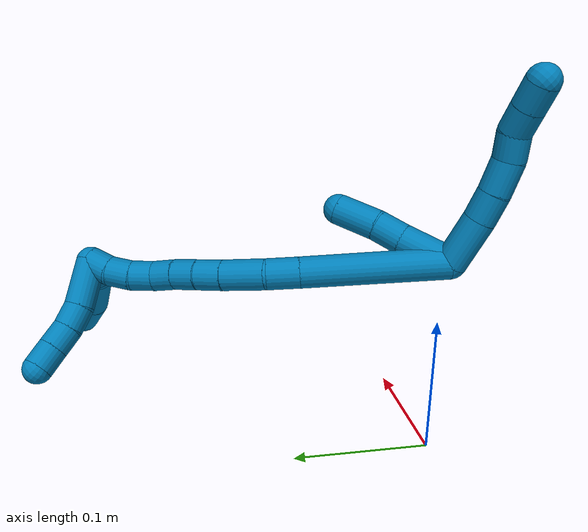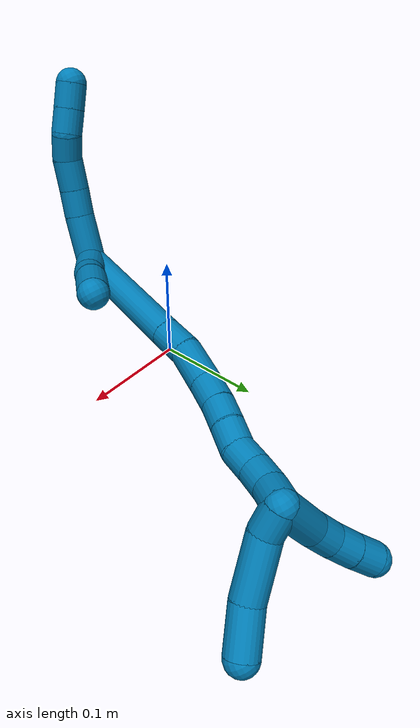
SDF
<sdf version="1.7">
 <world name="default">
  <model name="9">
   <static>0</static>
   <link name="9">
    <collision name="collision-cylinder-e_1_2_8">
     <pose>0.002254 0.006189 0.019031 -0.314427 0.112184 -0.017802</pose>
     <geometry><cylinder><radius>0.0125</radius><length>0.040277</length></cylinder></geometry>
     <surface>
      <friction><ode><mu>1.16</mu><mu2>1.16</mu2><slip1>0</slip1><slip2>0</slip2></ode></friction>
      <contact><ode><kp>1e+06</kp><kd>1</kd><max_vel>0</max_vel><min_depth>0.001</min_depth></ode></contact>
     </surface>
    </collision>
    <visual name="visual-cylinder-e_1_2_8">
     <pose>0.002254 0.006189 0.019031 -0.314427 0.112184 -0.017802</pose>
     <geometry><cylinder><radius>0.0125</radius><length>0.040277</length></cylinder></geometry>
     <material><ambient>0 0.490196 0.709804 1</ambient></material>
    </visual>
    <collision name="collision-cylinder-e_2_8_9">
     <pose>0.00621 0.016751 0.048389 -0.400535 0.1505 -0.030605</pose>
     <geometry><cylinder><radius>0.0125</radius><length>0.022687</length></cylinder></geometry>
     <surface>
      <friction><ode><mu>1.16</mu><mu2>1.16</mu2><slip1>0</slip1><slip2>0</slip2></ode></friction>
      <contact><ode><kp>1e+06</kp><kd>1</kd><max_vel>0</max_vel><min_depth>0.001</min_depth></ode></contact>
     </surface>
    </collision>
    <visual name="visual-cylinder-e_2_8_9">
     <pose>0.00621 0.016751 0.048389 -0.400535 0.1505 -0.030605</pose>
     <geometry><cylinder><radius>0.0125</radius><length>0.022687</length></cylinder></geometry>
     <material><ambient>0 0.490196 0.709804 1</ambient></material>
    </visual>
    <collision name="collision-cylinder-e_3_9_10">
     <pose>0.010977 0.026284 0.070225 -0.421483 0.238535 -0.051259</pose>
     <geometry><cylinder><radius>0.0125</radius><length>0.025958</length></cylinder></geometry>
     <surface>
      <friction><ode><mu>1.16</mu><mu2>1.16</mu2><slip1>0</slip1><slip2>0</slip2></ode></friction>
      <contact><ode><kp>1e+06</kp><kd>1</kd><max_vel>0</max_vel><min_depth>0.001</min_depth></ode></contact>
     </surface>
    </collision>
    <visual name="visual-cylinder-e_3_9_10">
     <pose>0.010977 0.026284 0.070225 -0.421483 0.238535 -0.051259</pose>
     <geometry><cylinder><radius>0.0125</radius><length>0.025958</length></cylinder></geometry>
     <material><ambient>0 0.490196 0.709804 1</ambient></material>
    </visual>
    <collision name="collision-cylinder-e_4_10_11">
     <pose>0.017263 0.037663 0.08926 -0.690596 0.318457 -0.115402</pose>
     <geometry><cylinder><radius>0.0125</radius><length>0.020563</length></cylinder></geometry>
     <surface>
      <friction><ode><mu>1.16</mu><mu2>1.16</mu2><slip1>0</slip1><slip2>0</slip2></ode></friction>
      <contact><ode><kp>1e+06</kp><kd>1</kd><max_vel>0</max_vel><min_depth>0.001</min_depth></ode></contact>
     </surface>
    </collision>
    <visual name="visual-cylinder-e_4_10_11">
     <pose>0.017263 0.037663 0.08926 -0.690596 0.318457 -0.115402</pose>
     <geometry><cylinder><radius>0.0125</radius><length>0.020563</length></cylinder></geometry>
     <material><ambient>0 0.490196 0.709804 1</ambient></material>
    </visual>
    <collision name="collision-cylinder-e_5_11_12">
     <pose>0.020235 0.049933 0.104821 -0.645465 -0.024594 0.008225</pose>
     <geometry><cylinder><radius>0.0125</radius><length>0.02012</length></cylinder></geometry>
     <surface>
      <friction><ode><mu>1.16</mu><mu2>1.16</mu2><slip1>0</slip1><slip2>0</slip2></ode></friction>
      <contact><ode><kp>1e+06</kp><kd>1</kd><max_vel>0</max_vel><min_depth>0.001</min_depth></ode></contact>
     </surface>
    </collision>
    <visual name="visual-cylinder-e_5_11_12">
     <pose>0.020235 0.049933 0.104821 -0.645465 -0.024594 0.008225</pose>
     <geometry><cylinder><radius>0.0125</radius><length>0.02012</length></cylinder></geometry>
     <material><ambient>0 0.490196 0.709804 1</ambient></material>
    </visual>
    <collision name="collision-cylinder-e_6_12_6">
     <pose>0.019766 0.062046 0.121051 -0.636883 -0.02176 0.007174</pose>
     <geometry><cylinder><radius>0.0125</radius><length>0.020395</length></cylinder></geometry>
     <surface>
      <friction><ode><mu>1.16</mu><mu2>1.16</mu2><slip1>0</slip1><slip2>0</slip2></ode></friction>
      <contact><ode><kp>1e+06</kp><kd>1</kd><max_vel>0</max_vel><min_depth>0.001</min_depth></ode></contact>
     </surface>
    </collision>
    <visual name="visual-cylinder-e_6_12_6">
     <pose>0.019766 0.062046 0.121051 -0.636883 -0.02176 0.007174</pose>
     <geometry><cylinder><radius>0.0125</radius><length>0.020395</length></cylinder></geometry>
     <material><ambient>0 0.490196 0.709804 1</ambient></material>
    </visual>
    <collision name="collision-cylinder-e_1_2_13">
     <pose>0.018905 0.005338 -0.007181 -2.50237 1.12874 -2.17815</pose>
     <geometry><cylinder><radius>0.0125</radius><length>0.041832</length></cylinder></geometry>
     <surface>
      <friction><ode><mu>1.16</mu><mu2>1.16</mu2><slip1>0</slip1><slip2>0</slip2></ode></friction>
      <contact><ode><kp>1e+06</kp><kd>1</kd><max_vel>0</max_vel><min_depth>0.001</min_depth></ode></contact>
     </surface>
    </collision>
    <visual name="visual-cylinder-e_1_2_13">
     <pose>0.018905 0.005338 -0.007181 -2.50237 1.12874 -2.17815</pose>
     <geometry><cylinder><radius>0.0125</radius><length>0.041832</length></cylinder></geometry>
     <material><ambient>0 0.490196 0.709804 1</ambient></material>
    </visual>
    <collision name="collision-cylinder-e_2_13_14">
     <pose>0.047965 0.015279 -0.017854 -2.21975 1.05351 -1.72809</pose>
     <geometry><cylinder><radius>0.0125</radius><length>0.023366</length></cylinder></geometry>
     <surface>
      <friction><ode><mu>1.16</mu><mu2>1.16</mu2><slip1>0</slip1><slip2>0</slip2></ode></friction>
      <contact><ode><kp>1e+06</kp><kd>1</kd><max_vel>0</max_vel><min_depth>0.001</min_depth></ode></contact>
     </surface>
    </collision>
    <visual name="visual-cylinder-e_2_13_14">
     <pose>0.047965 0.015279 -0.017854 -2.21975 1.05351 -1.72809</pose>
     <geometry><cylinder><radius>0.0125</radius><length>0.023366</length></cylinder></geometry>
     <material><ambient>0 0.490196 0.709804 1</ambient></material>
    </visual>
    <collision name="collision-cylinder-e_3_14_5">
     <pose>0.073132 0.025206 -0.028352 -2.49179 1.04062 -2.07869</pose>
     <geometry><cylinder><radius>0.0125</radius><length>0.034802</length></cylinder></geometry>
     <surface>
      <friction><ode><mu>1.16</mu><mu2>1.16</mu2><slip1>0</slip1><slip2>0</slip2></ode></friction>
      <contact><ode><kp>1e+06</kp><kd>1</kd><max_vel>0</max_vel><min_depth>0.001</min_depth></ode></contact>
     </surface>
    </collision>
    <visual name="visual-cylinder-e_3_14_5">
     <pose>0.073132 0.025206 -0.028352 -2.49179 1.04062 -2.07869</pose>
     <geometry><cylinder><radius>0.0125</radius><length>0.034802</length></cylinder></geometry>
     <material><ambient>0 0.490196 0.709804 1</ambient></material>
    </visual>
    <collision name="collision-cylinder-e_1_2_15">
     <pose>0.026931 0.026678 -0.043541 -2.59188 0.485327 -1.44085</pose>
     <geometry><cylinder><radius>0.0125</radius><length>0.115461</length></cylinder></geometry>
     <surface>
      <friction><ode><mu>1.16</mu><mu2>1.16</mu2><slip1>0</slip1><slip2>0</slip2></ode></friction>
      <contact><ode><kp>1e+06</kp><kd>1</kd><max_vel>0</max_vel><min_depth>0.001</min_depth></ode></contact>
     </surface>
    </collision>
    <visual name="visual-cylinder-e_1_2_15">
     <pose>0.026931 0.026678 -0.043541 -2.59188 0.485327 -1.44085</pose>
     <geometry><cylinder><radius>0.0125</radius><length>0.115461</length></cylinder></geometry>
     <material><ambient>0 0.490196 0.709804 1</ambient></material>
    </visual>
    <collision name="collision-cylinder-e_2_15_16">
     <pose>0.059999 0.059707 -0.096955 -2.56998 0.481694 -1.39244</pose>
     <geometry><cylinder><radius>0.0125</radius><length>0.026494</length></cylinder></geometry>
     <surface>
      <friction><ode><mu>1.16</mu><mu2>1.16</mu2><slip1>0</slip1><slip2>0</slip2></ode></friction>
      <contact><ode><kp>1e+06</kp><kd>1</kd><max_vel>0</max_vel><min_depth>0.001</min_depth></ode></contact>
     </surface>
    </collision>
    <visual name="visual-cylinder-e_2_15_16">
     <pose>0.059999 0.059707 -0.096955 -2.56998 0.481694 -1.39244</pose>
     <geometry><cylinder><radius>0.0125</radius><length>0.026494</length></cylinder></geometry>
     <material><ambient>0 0.490196 0.709804 1</ambient></material>
    </visual>
    <collision name="collision-cylinder-e_3_16_17">
     <pose>0.076728 0.071393 -0.120265 -2.76364 0.632304 -2.08346</pose>
     <geometry><cylinder><radius>0.0125</radius><length>0.035844</length></cylinder></geometry>
     <surface>
      <friction><ode><mu>1.16</mu><mu2>1.16</mu2><slip1>0</slip1><slip2>0</slip2></ode></friction>
      <contact><ode><kp>1e+06</kp><kd>1</kd><max_vel>0</max_vel><min_depth>0.001</min_depth></ode></contact>
     </surface>
    </collision>
    <visual name="visual-cylinder-e_3_16_17">
     <pose>0.076728 0.071393 -0.120265 -2.76364 0.632304 -2.08346</pose>
     <geometry><cylinder><radius>0.0125</radius><length>0.035844</length></cylinder></geometry>
     <material><ambient>0 0.490196 0.709804 1</ambient></material>
    </visual>
    <collision name="collision-cylinder-e_4_17_18">
     <pose>0.094223 0.079851 -0.141666 -2.76784 0.678939 -2.15842</pose>
     <geometry><cylinder><radius>0.0125</radius><length>0.021984</length></cylinder></geometry>
     <surface>
      <friction><ode><mu>1.16</mu><mu2>1.16</mu2><slip1>0</slip1><slip2>0</slip2></ode></friction>
      <contact><ode><kp>1e+06</kp><kd>1</kd><max_vel>0</max_vel><min_depth>0.001</min_depth></ode></contact>
     </surface>
    </collision>
    <visual name="visual-cylinder-e_4_17_18">
     <pose>0.094223 0.079851 -0.141666 -2.76784 0.678939 -2.15842</pose>
     <geometry><cylinder><radius>0.0125</radius><length>0.021984</length></cylinder></geometry>
     <material><ambient>0 0.490196 0.709804 1</ambient></material>
    </visual>
    <collision name="collision-cylinder-e_5_18_19">
     <pose>0.10778 0.085031 -0.156938 -2.86731 0.71973 -2.43848</pose>
     <geometry><cylinder><radius>0.0125</radius><length>0.020191</length></cylinder></geometry>
     <surface>
      <friction><ode><mu>1.16</mu><mu2>1.16</mu2><slip1>0</slip1><slip2>0</slip2></ode></friction>
      <contact><ode><kp>1e+06</kp><kd>1</kd><max_vel>0</max_vel><min_depth>0.001</min_depth></ode></contact>
     </surface>
    </collision>
    <visual name="visual-cylinder-e_5_18_19">
     <pose>0.10778 0.085031 -0.156938 -2.86731 0.71973 -2.43848</pose>
     <geometry><cylinder><radius>0.0125</radius><length>0.020191</length></cylinder></geometry>
     <material><ambient>0 0.490196 0.709804 1</ambient></material>
    </visual>
    <collision name="collision-cylinder-e_6_19_20">
     <pose>0.120534 0.088746 -0.172008 -2.93104 0.655152 -2.53864</pose>
     <geometry><cylinder><radius>0.0125</radius><length>0.020021</length></cylinder></geometry>
     <surface>
      <friction><ode><mu>1.16</mu><mu2>1.16</mu2><slip1>0</slip1><slip2>0</slip2></ode></friction>
      <contact><ode><kp>1e+06</kp><kd>1</kd><max_vel>0</max_vel><min_depth>0.001</min_depth></ode></contact>
     </surface>
    </collision>
    <visual name="visual-cylinder-e_6_19_20">
     <pose>0.120534 0.088746 -0.172008 -2.93104 0.655152 -2.53864</pose>
     <geometry><cylinder><radius>0.0125</radius><length>0.020021</length></cylinder></geometry>
     <material><ambient>0 0.490196 0.709804 1</ambient></material>
    </visual>
    <collision name="collision-cylinder-e_7_20_21">
     <pose>0.132069 0.094821 -0.18691 -2.58771 0.574573 -1.60948</pose>
     <geometry><cylinder><radius>0.0125</radius><length>0.020002</length></cylinder></geometry>
     <surface>
      <friction><ode><mu>1.16</mu><mu2>1.16</mu2><slip1>0</slip1><slip2>0</slip2></ode></friction>
      <contact><ode><kp>1e+06</kp><kd>1</kd><max_vel>0</max_vel><min_depth>0.001</min_depth></ode></contact>
     </surface>
    </collision>
    <visual name="visual-cylinder-e_7_20_21">
     <pose>0.132069 0.094821 -0.18691 -2.58771 0.574573 -1.60948</pose>
     <geometry><cylinder><radius>0.0125</radius><length>0.020002</length></cylinder></geometry>
     <material><ambient>0 0.490196 0.709804 1</ambient></material>
    </visual>
    <collision name="collision-cylinder-e_8_21_22">
     <pose>0.144397 0.103555 -0.199868 -2.503 0.76044 -1.75937</pose>
     <geometry><cylinder><radius>0.0125</radius><length>0.020001</length></cylinder></geometry>
     <surface>
      <friction><ode><mu>1.16</mu><mu2>1.16</mu2><slip1>0</slip1><slip2>0</slip2></ode></friction>
      <contact><ode><kp>1e+06</kp><kd>1</kd><max_vel>0</max_vel><min_depth>0.001</min_depth></ode></contact>
     </surface>
    </collision>
    <visual name="visual-cylinder-e_8_21_22">
     <pose>0.144397 0.103555 -0.199868 -2.503 0.76044 -1.75937</pose>
     <geometry><cylinder><radius>0.0125</radius><length>0.020001</length></cylinder></geometry>
     <material><ambient>0 0.490196 0.709804 1</ambient></material>
    </visual>
    <collision name="collision-cylinder-e_9_22_1">
     <pose>0.159683 0.111583 -0.209664 -2.39118 0.995846 -1.88759</pose>
     <geometry><cylinder><radius>0.0125</radius><length>0.020002</length></cylinder></geometry>
     <surface>
      <friction><ode><mu>1.16</mu><mu2>1.16</mu2><slip1>0</slip1><slip2>0</slip2></ode></friction>
      <contact><ode><kp>1e+06</kp><kd>1</kd><max_vel>0</max_vel><min_depth>0.001</min_depth></ode></contact>
     </surface>
    </collision>
    <visual name="visual-cylinder-e_9_22_1">
     <pose>0.159683 0.111583 -0.209664 -2.39118 0.995846 -1.88759</pose>
     <geometry><cylinder><radius>0.0125</radius><length>0.020002</length></cylinder></geometry>
     <material><ambient>0 0.490196 0.709804 1</ambient></material>
    </visual>
    <collision name="collision-cylinder-e_1_1_23">
     <pose>0.167995 0.106296 -0.21976 2.16802 -0.007432 -0.014042</pose>
     <geometry><cylinder><radius>0.0125</radius><length>0.021759</length></cylinder></geometry>
     <surface>
      <friction><ode><mu>1.16</mu><mu2>1.16</mu2><slip1>0</slip1><slip2>0</slip2></ode></friction>
      <contact><ode><kp>1e+06</kp><kd>1</kd><max_vel>0</max_vel><min_depth>0.001</min_depth></ode></contact>
     </surface>
    </collision>
    <visual name="visual-cylinder-e_1_1_23">
     <pose>0.167995 0.106296 -0.21976 2.16802 -0.007432 -0.014042</pose>
     <geometry><cylinder><radius>0.0125</radius><length>0.021759</length></cylinder></geometry>
     <material><ambient>0 0.490196 0.709804 1</ambient></material>
    </visual>
    <collision name="collision-cylinder-e_2_23_24">
     <pose>0.172826 0.083198 -0.242268 2.43114 0.223361 0.587154</pose>
     <geometry><cylinder><radius>0.0125</radius><length>0.044345</length></cylinder></geometry>
     <surface>
      <friction><ode><mu>1.16</mu><mu2>1.16</mu2><slip1>0</slip1><slip2>0</slip2></ode></friction>
      <contact><ode><kp>1e+06</kp><kd>1</kd><max_vel>0</max_vel><min_depth>0.001</min_depth></ode></contact>
     </surface>
    </collision>
    <visual name="visual-cylinder-e_2_23_24">
     <pose>0.172826 0.083198 -0.242268 2.43114 0.223361 0.587154</pose>
     <geometry><cylinder><radius>0.0125</radius><length>0.044345</length></cylinder></geometry>
     <material><ambient>0 0.490196 0.709804 1</ambient></material>
    </visual>
    <collision name="collision-cylinder-e_3_24_4">
     <pose>0.183267 0.060997 -0.272481 2.61149 0.332386 1.10706</pose>
     <geometry><cylinder><radius>0.0125</radius><length>0.033895</length></cylinder></geometry>
     <surface>
      <friction><ode><mu>1.16</mu><mu2>1.16</mu2><slip1>0</slip1><slip2>0</slip2></ode></friction>
      <contact><ode><kp>1e+06</kp><kd>1</kd><max_vel>0</max_vel><min_depth>0.001</min_depth></ode></contact>
     </surface>
    </collision>
    <visual name="visual-cylinder-e_3_24_4">
     <pose>0.183267 0.060997 -0.272481 2.61149 0.332386 1.10706</pose>
     <geometry><cylinder><radius>0.0125</radius><length>0.033895</length></cylinder></geometry>
     <material><ambient>0 0.490196 0.709804 1</ambient></material>
    </visual>
    <collision name="collision-cylinder-e_1_1_25">
     <pose>0.154341 0.115611 -0.228151 -3.11961 -0.757833 3.08639</pose>
     <geometry><cylinder><radius>0.0125</radius><length>0.039964</length></cylinder></geometry>
     <surface>
      <friction><ode><mu>1.16</mu><mu2>1.16</mu2><slip1>0</slip1><slip2>0</slip2></ode></friction>
      <contact><ode><kp>1e+06</kp><kd>1</kd><max_vel>0</max_vel><min_depth>0.001</min_depth></ode></contact>
     </surface>
    </collision>
    <visual name="visual-cylinder-e_1_1_25">
     <pose>0.154341 0.115611 -0.228151 -3.11961 -0.757833 3.08639</pose>
     <geometry><cylinder><radius>0.0125</radius><length>0.039964</length></cylinder></geometry>
     <material><ambient>0 0.490196 0.709804 1</ambient></material>
    </visual>
    <collision name="collision-cylinder-e_2_25_26">
     <pose>0.134764 0.11784 -0.250567 -2.90451 -0.622923 2.43293</pose>
     <geometry><cylinder><radius>0.0125</radius><length>0.020028</length></cylinder></geometry>
     <surface>
      <friction><ode><mu>1.16</mu><mu2>1.16</mu2><slip1>0</slip1><slip2>0</slip2></ode></friction>
      <contact><ode><kp>1e+06</kp><kd>1</kd><max_vel>0</max_vel><min_depth>0.001</min_depth></ode></contact>
     </surface>
    </collision>
    <visual name="visual-cylinder-e_2_25_26">
     <pose>0.134764 0.11784 -0.250567 -2.90451 -0.622923 2.43293</pose>
     <geometry><cylinder><radius>0.0125</radius><length>0.020028</length></cylinder></geometry>
     <material><ambient>0 0.490196 0.709804 1</ambient></material>
    </visual>
    <collision name="collision-cylinder-e_3_26_27">
     <pose>0.123946 0.123116 -0.266467 -2.74306 -0.520865 1.84462</pose>
     <geometry><cylinder><radius>0.0125</radius><length>0.020001</length></cylinder></geometry>
     <surface>
      <friction><ode><mu>1.16</mu><mu2>1.16</mu2><slip1>0</slip1><slip2>0</slip2></ode></friction>
      <contact><ode><kp>1e+06</kp><kd>1</kd><max_vel>0</max_vel><min_depth>0.001</min_depth></ode></contact>
     </surface>
    </collision>
    <visual name="visual-cylinder-e_3_26_27">
     <pose>0.123946 0.123116 -0.266467 -2.74306 -0.520865 1.84462</pose>
     <geometry><cylinder><radius>0.0125</radius><length>0.020001</length></cylinder></geometry>
     <material><ambient>0 0.490196 0.709804 1</ambient></material>
    </visual>
    <collision name="collision-cylinder-e_4_27_3">
     <pose>0.11362 0.130118 -0.282093 -2.69708 -0.564192 1.81705</pose>
     <geometry><cylinder><radius>0.0125</radius><length>0.020007</length></cylinder></geometry>
     <surface>
      <friction><ode><mu>1.16</mu><mu2>1.16</mu2><slip1>0</slip1><slip2>0</slip2></ode></friction>
      <contact><ode><kp>1e+06</kp><kd>1</kd><max_vel>0</max_vel><min_depth>0.001</min_depth></ode></contact>
     </surface>
    </collision>
    <visual name="visual-cylinder-e_4_27_3">
     <pose>0.11362 0.130118 -0.282093 -2.69708 -0.564192 1.81705</pose>
     <geometry><cylinder><radius>0.0125</radius><length>0.020007</length></cylinder></geometry>
     <material><ambient>0 0.490196 0.709804 1</ambient></material>
    </visual>
    <collision name="collision-sphere-3">
     <pose>0.108271 0.133753 -0.289725 0 -0 0</pose>
     <geometry><sphere><radius>0.0125</radius></sphere></geometry>
     <surface>
      <friction><ode><mu>1.16</mu><mu2>1.16</mu2><slip1>0</slip1><slip2>0</slip2></ode></friction>
      <contact><ode><kp>1e+06</kp><kd>1</kd><max_vel>0</max_vel><min_depth>0.001</min_depth></ode></contact>
     </surface>
    </collision>
    <visual name="visual-sphere-3">
     <pose>0.108271 0.133753 -0.289725 0 -0 0</pose>
     <geometry><sphere><radius>0.0125</radius></sphere></geometry>
     <material><ambient>0 0.490196 0.709804 1</ambient></material>
    </visual>
    <collision name="collision-sphere-27">
     <pose>0.118969 0.126483 -0.274462 0 -0 0</pose>
     <geometry><sphere><radius>0.0125</radius></sphere></geometry>
     <surface>
      <friction><ode><mu>1.16</mu><mu2>1.16</mu2><slip1>0</slip1><slip2>0</slip2></ode></friction>
      <contact><ode><kp>1e+06</kp><kd>1</kd><max_vel>0</max_vel><min_depth>0.001</min_depth></ode></contact>
     </surface>
    </collision>
    <visual name="visual-sphere-27">
     <pose>0.118969 0.126483 -0.274462 0 -0 0</pose>
     <geometry><sphere><radius>0.0125</radius></sphere></geometry>
     <material><ambient>0 0.490196 0.709804 1</ambient></material>
    </visual>
    <collision name="collision-sphere-26">
     <pose>0.128922 0.11975 -0.258473 0 -0 0</pose>
     <geometry><sphere><radius>0.0125</radius></sphere></geometry>
     <surface>
      <friction><ode><mu>1.16</mu><mu2>1.16</mu2><slip1>0</slip1><slip2>0</slip2></ode></friction>
      <contact><ode><kp>1e+06</kp><kd>1</kd><max_vel>0</max_vel><min_depth>0.001</min_depth></ode></contact>
     </surface>
    </collision>
    <visual name="visual-sphere-26">
     <pose>0.128922 0.11975 -0.258473 0 -0 0</pose>
     <geometry><sphere><radius>0.0125</radius></sphere></geometry>
     <material><ambient>0 0.490196 0.709804 1</ambient></material>
    </visual>
    <collision name="collision-sphere-25">
     <pose>0.140607 0.11593 -0.242661 0 -0 0</pose>
     <geometry><sphere><radius>0.0125</radius></sphere></geometry>
     <surface>
      <friction><ode><mu>1.16</mu><mu2>1.16</mu2><slip1>0</slip1><slip2>0</slip2></ode></friction>
      <contact><ode><kp>1e+06</kp><kd>1</kd><max_vel>0</max_vel><min_depth>0.001</min_depth></ode></contact>
     </surface>
    </collision>
    <visual name="visual-sphere-25">
     <pose>0.140607 0.11593 -0.242661 0 -0 0</pose>
     <geometry><sphere><radius>0.0125</radius></sphere></geometry>
     <material><ambient>0 0.490196 0.709804 1</ambient></material>
    </visual>
    <collision name="collision-sphere-4">
     <pose>0.188797 0.052897 -0.286302 0 -0 0</pose>
     <geometry><sphere><radius>0.0125</radius></sphere></geometry>
     <surface>
      <friction><ode><mu>1.16</mu><mu2>1.16</mu2><slip1>0</slip1><slip2>0</slip2></ode></friction>
      <contact><ode><kp>1e+06</kp><kd>1</kd><max_vel>0</max_vel><min_depth>0.001</min_depth></ode></contact>
     </surface>
    </collision>
    <visual name="visual-sphere-4">
     <pose>0.188797 0.052897 -0.286302 0 -0 0</pose>
     <geometry><sphere><radius>0.0125</radius></sphere></geometry>
     <material><ambient>0 0.490196 0.709804 1</ambient></material>
    </visual>
    <collision name="collision-sphere-24">
     <pose>0.177737 0.069097 -0.258659 0 -0 0</pose>
     <geometry><sphere><radius>0.0125</radius></sphere></geometry>
     <surface>
      <friction><ode><mu>1.16</mu><mu2>1.16</mu2><slip1>0</slip1><slip2>0</slip2></ode></friction>
      <contact><ode><kp>1e+06</kp><kd>1</kd><max_vel>0</max_vel><min_depth>0.001</min_depth></ode></contact>
     </surface>
    </collision>
    <visual name="visual-sphere-24">
     <pose>0.177737 0.069097 -0.258659 0 -0 0</pose>
     <geometry><sphere><radius>0.0125</radius></sphere></geometry>
     <material><ambient>0 0.490196 0.709804 1</ambient></material>
    </visual>
    <collision name="collision-sphere-23">
     <pose>0.167914 0.0973 -0.225877 0 -0 0</pose>
     <geometry><sphere><radius>0.0125</radius></sphere></geometry>
     <surface>
      <friction><ode><mu>1.16</mu><mu2>1.16</mu2><slip1>0</slip1><slip2>0</slip2></ode></friction>
      <contact><ode><kp>1e+06</kp><kd>1</kd><max_vel>0</max_vel><min_depth>0.001</min_depth></ode></contact>
     </surface>
    </collision>
    <visual name="visual-sphere-23">
     <pose>0.167914 0.0973 -0.225877 0 -0 0</pose>
     <geometry><sphere><radius>0.0125</radius></sphere></geometry>
     <material><ambient>0 0.490196 0.709804 1</ambient></material>
    </visual>
    <collision name="collision-sphere-1">
     <pose>0.168076 0.115292 -0.213642 0 -0 0</pose>
     <geometry><sphere><radius>0.0125</radius></sphere></geometry>
     <surface>
      <friction><ode><mu>1.16</mu><mu2>1.16</mu2><slip1>0</slip1><slip2>0</slip2></ode></friction>
      <contact><ode><kp>1e+06</kp><kd>1</kd><max_vel>0</max_vel><min_depth>0.001</min_depth></ode></contact>
     </surface>
    </collision>
    <visual name="visual-sphere-1">
     <pose>0.168076 0.115292 -0.213642 0 -0 0</pose>
     <geometry><sphere><radius>0.0125</radius></sphere></geometry>
     <material><ambient>0 0.490196 0.709804 1</ambient></material>
    </visual>
    <collision name="collision-sphere-22">
     <pose>0.15129 0.107874 -0.205686 0 -0 0</pose>
     <geometry><sphere><radius>0.0125</radius></sphere></geometry>
     <surface>
      <friction><ode><mu>1.16</mu><mu2>1.16</mu2><slip1>0</slip1><slip2>0</slip2></ode></friction>
      <contact><ode><kp>1e+06</kp><kd>1</kd><max_vel>0</max_vel><min_depth>0.001</min_depth></ode></contact>
     </surface>
    </collision>
    <visual name="visual-sphere-22">
     <pose>0.15129 0.107874 -0.205686 0 -0 0</pose>
     <geometry><sphere><radius>0.0125</radius></sphere></geometry>
     <material><ambient>0 0.490196 0.709804 1</ambient></material>
    </visual>
    <collision name="collision-sphere-21">
     <pose>0.137504 0.099236 -0.19405 0 -0 0</pose>
     <geometry><sphere><radius>0.0125</radius></sphere></geometry>
     <surface>
      <friction><ode><mu>1.16</mu><mu2>1.16</mu2><slip1>0</slip1><slip2>0</slip2></ode></friction>
      <contact><ode><kp>1e+06</kp><kd>1</kd><max_vel>0</max_vel><min_depth>0.001</min_depth></ode></contact>
     </surface>
    </collision>
    <visual name="visual-sphere-21">
     <pose>0.137504 0.099236 -0.19405 0 -0 0</pose>
     <geometry><sphere><radius>0.0125</radius></sphere></geometry>
     <material><ambient>0 0.490196 0.709804 1</ambient></material>
    </visual>
    <collision name="collision-sphere-12">
     <pose>0.019987 0.055983 0.112854 0 -0 0</pose>
     <geometry><sphere><radius>0.0125</radius></sphere></geometry>
     <surface>
      <friction><ode><mu>1.16</mu><mu2>1.16</mu2><slip1>0</slip1><slip2>0</slip2></ode></friction>
      <contact><ode><kp>1e+06</kp><kd>1</kd><max_vel>0</max_vel><min_depth>0.001</min_depth></ode></contact>
     </surface>
    </collision>
    <visual name="visual-sphere-12">
     <pose>0.019987 0.055983 0.112854 0 -0 0</pose>
     <geometry><sphere><radius>0.0125</radius></sphere></geometry>
     <material><ambient>0 0.490196 0.709804 1</ambient></material>
    </visual>
    <collision name="collision-sphere-11">
     <pose>0.020482 0.043883 0.096787 0 -0 0</pose>
     <geometry><sphere><radius>0.0125</radius></sphere></geometry>
     <surface>
      <friction><ode><mu>1.16</mu><mu2>1.16</mu2><slip1>0</slip1><slip2>0</slip2></ode></friction>
      <contact><ode><kp>1e+06</kp><kd>1</kd><max_vel>0</max_vel><min_depth>0.001</min_depth></ode></contact>
     </surface>
    </collision>
    <visual name="visual-sphere-11">
     <pose>0.020482 0.043883 0.096787 0 -0 0</pose>
     <geometry><sphere><radius>0.0125</radius></sphere></geometry>
     <material><ambient>0 0.490196 0.709804 1</ambient></material>
    </visual>
    <collision name="collision-sphere-10">
     <pose>0.014044 0.031444 0.081733 0 -0 0</pose>
     <geometry><sphere><radius>0.0125</radius></sphere></geometry>
     <surface>
      <friction><ode><mu>1.16</mu><mu2>1.16</mu2><slip1>0</slip1><slip2>0</slip2></ode></friction>
      <contact><ode><kp>1e+06</kp><kd>1</kd><max_vel>0</max_vel><min_depth>0.001</min_depth></ode></contact>
     </surface>
    </collision>
    <visual name="visual-sphere-10">
     <pose>0.014044 0.031444 0.081733 0 -0 0</pose>
     <geometry><sphere><radius>0.0125</radius></sphere></geometry>
     <material><ambient>0 0.490196 0.709804 1</ambient></material>
    </visual>
    <collision name="collision-sphere-9">
     <pose>0.007911 0.021124 0.058717 0 -0 0</pose>
     <geometry><sphere><radius>0.0125</radius></sphere></geometry>
     <surface>
      <friction><ode><mu>1.16</mu><mu2>1.16</mu2><slip1>0</slip1><slip2>0</slip2></ode></friction>
      <contact><ode><kp>1e+06</kp><kd>1</kd><max_vel>0</max_vel><min_depth>0.001</min_depth></ode></contact>
     </surface>
    </collision>
    <visual name="visual-sphere-9">
     <pose>0.007911 0.021124 0.058717 0 -0 0</pose>
     <geometry><sphere><radius>0.0125</radius></sphere></geometry>
     <material><ambient>0 0.490196 0.709804 1</ambient></material>
    </visual>
    <collision name="collision-sphere-2">
     <geometry><sphere><radius>0.0125</radius></sphere></geometry>
     <surface>
      <friction><ode><mu>1.16</mu><mu2>1.16</mu2><slip1>0</slip1><slip2>0</slip2></ode></friction>
      <contact><ode><kp>1e+06</kp><kd>1</kd><max_vel>0</max_vel><min_depth>0.001</min_depth></ode></contact>
     </surface>
    </collision>
    <visual name="visual-sphere-2">
     <geometry><sphere><radius>0.0125</radius></sphere></geometry>
     <material><ambient>0 0.490196 0.709804 1</ambient></material>
    </visual>
    <collision name="collision-sphere-19">
     <pose>0.114435 0.087087 -0.164245 0 -0 0</pose>
     <geometry><sphere><radius>0.0125</radius></sphere></geometry>
     <surface>
      <friction><ode><mu>1.16</mu><mu2>1.16</mu2><slip1>0</slip1><slip2>0</slip2></ode></friction>
      <contact><ode><kp>1e+06</kp><kd>1</kd><max_vel>0</max_vel><min_depth>0.001</min_depth></ode></contact>
     </surface>
    </collision>
    <visual name="visual-sphere-19">
     <pose>0.114435 0.087087 -0.164245 0 -0 0</pose>
     <geometry><sphere><radius>0.0125</radius></sphere></geometry>
     <material><ambient>0 0.490196 0.709804 1</ambient></material>
    </visual>
    <collision name="collision-sphere-8">
     <pose>0.004509 0.012378 0.038061 0 -0 0</pose>
     <geometry><sphere><radius>0.0125</radius></sphere></geometry>
     <surface>
      <friction><ode><mu>1.16</mu><mu2>1.16</mu2><slip1>0</slip1><slip2>0</slip2></ode></friction>
      <contact><ode><kp>1e+06</kp><kd>1</kd><max_vel>0</max_vel><min_depth>0.001</min_depth></ode></contact>
     </surface>
    </collision>
    <visual name="visual-sphere-8">
     <pose>0.004509 0.012378 0.038061 0 -0 0</pose>
     <geometry><sphere><radius>0.0125</radius></sphere></geometry>
     <material><ambient>0 0.490196 0.709804 1</ambient></material>
    </visual>
    <collision name="collision-sphere-6">
     <pose>0.019544 0.068109 0.129247 0 -0 0</pose>
     <geometry><sphere><radius>0.0125</radius></sphere></geometry>
     <surface>
      <friction><ode><mu>1.16</mu><mu2>1.16</mu2><slip1>0</slip1><slip2>0</slip2></ode></friction>
      <contact><ode><kp>1e+06</kp><kd>1</kd><max_vel>0</max_vel><min_depth>0.001</min_depth></ode></contact>
     </surface>
    </collision>
    <visual name="visual-sphere-6">
     <pose>0.019544 0.068109 0.129247 0 -0 0</pose>
     <geometry><sphere><radius>0.0125</radius></sphere></geometry>
     <material><ambient>0 0.490196 0.709804 1</ambient></material>
    </visual>
    <collision name="collision-sphere-13">
     <pose>0.037811 0.010676 -0.014362 0 -0 0</pose>
     <geometry><sphere><radius>0.0125</radius></sphere></geometry>
     <surface>
      <friction><ode><mu>1.16</mu><mu2>1.16</mu2><slip1>0</slip1><slip2>0</slip2></ode></friction>
      <contact><ode><kp>1e+06</kp><kd>1</kd><max_vel>0</max_vel><min_depth>0.001</min_depth></ode></contact>
     </surface>
    </collision>
    <visual name="visual-sphere-13">
     <pose>0.037811 0.010676 -0.014362 0 -0 0</pose>
     <geometry><sphere><radius>0.0125</radius></sphere></geometry>
     <material><ambient>0 0.490196 0.709804 1</ambient></material>
    </visual>
    <collision name="collision-sphere-14">
     <pose>0.05812 0.019882 -0.021346 0 -0 0</pose>
     <geometry><sphere><radius>0.0125</radius></sphere></geometry>
     <surface>
      <friction><ode><mu>1.16</mu><mu2>1.16</mu2><slip1>0</slip1><slip2>0</slip2></ode></friction>
      <contact><ode><kp>1e+06</kp><kd>1</kd><max_vel>0</max_vel><min_depth>0.001</min_depth></ode></contact>
     </surface>
    </collision>
    <visual name="visual-sphere-14">
     <pose>0.05812 0.019882 -0.021346 0 -0 0</pose>
     <geometry><sphere><radius>0.0125</radius></sphere></geometry>
     <material><ambient>0 0.490196 0.709804 1</ambient></material>
    </visual>
    <collision name="collision-sphere-5">
     <pose>0.088144 0.03053 -0.035358 0 -0 0</pose>
     <geometry><sphere><radius>0.0125</radius></sphere></geometry>
     <surface>
      <friction><ode><mu>1.16</mu><mu2>1.16</mu2><slip1>0</slip1><slip2>0</slip2></ode></friction>
      <contact><ode><kp>1e+06</kp><kd>1</kd><max_vel>0</max_vel><min_depth>0.001</min_depth></ode></contact>
     </surface>
    </collision>
    <visual name="visual-sphere-5">
     <pose>0.088144 0.03053 -0.035358 0 -0 0</pose>
     <geometry><sphere><radius>0.0125</radius></sphere></geometry>
     <material><ambient>0 0.490196 0.709804 1</ambient></material>
    </visual>
    <collision name="collision-sphere-15">
     <pose>0.053862 0.053356 -0.087081 0 -0 0</pose>
     <geometry><sphere><radius>0.0125</radius></sphere></geometry>
     <surface>
      <friction><ode><mu>1.16</mu><mu2>1.16</mu2><slip1>0</slip1><slip2>0</slip2></ode></friction>
      <contact><ode><kp>1e+06</kp><kd>1</kd><max_vel>0</max_vel><min_depth>0.001</min_depth></ode></contact>
     </surface>
    </collision>
    <visual name="visual-sphere-15">
     <pose>0.053862 0.053356 -0.087081 0 -0 0</pose>
     <geometry><sphere><radius>0.0125</radius></sphere></geometry>
     <material><ambient>0 0.490196 0.709804 1</ambient></material>
    </visual>
    <collision name="collision-sphere-16">
     <pose>0.066136 0.066058 -0.106828 0 -0 0</pose>
     <geometry><sphere><radius>0.0125</radius></sphere></geometry>
     <surface>
      <friction><ode><mu>1.16</mu><mu2>1.16</mu2><slip1>0</slip1><slip2>0</slip2></ode></friction>
      <contact><ode><kp>1e+06</kp><kd>1</kd><max_vel>0</max_vel><min_depth>0.001</min_depth></ode></contact>
     </surface>
    </collision>
    <visual name="visual-sphere-16">
     <pose>0.066136 0.066058 -0.106828 0 -0 0</pose>
     <geometry><sphere><radius>0.0125</radius></sphere></geometry>
     <material><ambient>0 0.490196 0.709804 1</ambient></material>
    </visual>
    <collision name="collision-sphere-17">
     <pose>0.08732 0.076728 -0.133702 0 -0 0</pose>
     <geometry><sphere><radius>0.0125</radius></sphere></geometry>
     <surface>
      <friction><ode><mu>1.16</mu><mu2>1.16</mu2><slip1>0</slip1><slip2>0</slip2></ode></friction>
      <contact><ode><kp>1e+06</kp><kd>1</kd><max_vel>0</max_vel><min_depth>0.001</min_depth></ode></contact>
     </surface>
    </collision>
    <visual name="visual-sphere-17">
     <pose>0.08732 0.076728 -0.133702 0 -0 0</pose>
     <geometry><sphere><radius>0.0125</radius></sphere></geometry>
     <material><ambient>0 0.490196 0.709804 1</ambient></material>
    </visual>
    <collision name="collision-sphere-18">
     <pose>0.101126 0.082974 -0.14963 0 -0 0</pose>
     <geometry><sphere><radius>0.0125</radius></sphere></geometry>
     <surface>
      <friction><ode><mu>1.16</mu><mu2>1.16</mu2><slip1>0</slip1><slip2>0</slip2></ode></friction>
      <contact><ode><kp>1e+06</kp><kd>1</kd><max_vel>0</max_vel><min_depth>0.001</min_depth></ode></contact>
     </surface>
    </collision>
    <visual name="visual-sphere-18">
     <pose>0.101126 0.082974 -0.14963 0 -0 0</pose>
     <geometry><sphere><radius>0.0125</radius></sphere></geometry>
     <material><ambient>0 0.490196 0.709804 1</ambient></material>
    </visual>
    <collision name="collision-sphere-20">
     <pose>0.126633 0.090405 -0.17977 0 -0 0</pose>
     <geometry><sphere><radius>0.0125</radius></sphere></geometry>
     <surface>
      <friction><ode><mu>1.16</mu><mu2>1.16</mu2><slip1>0</slip1><slip2>0</slip2></ode></friction>
      <contact><ode><kp>1e+06</kp><kd>1</kd><max_vel>0</max_vel><min_depth>0.001</min_depth></ode></contact>
     </surface>
    </collision>
    <visual name="visual-sphere-20">
     <pose>0.126633 0.090405 -0.17977 0 -0 0</pose>
     <geometry><sphere><radius>0.0125</radius></sphere></geometry>
     <material><ambient>0 0.490196 0.709804 1</ambient></material>
    </visual>
    <inertial>
     <pose>0.080164 0.059466 -0.100051 0 -0 0</pose>
     <mass>0.75</mass>
     <inertia>
      <ixx>-7.6e-05</ixx>
      <ixy>0</ixy>
      <ixz>0</ixz>
      <iyy>-5.2e-05</iyy>
      <iyz>0</iyz>
      <izz>-0.000174</izz>
     </inertia>
    </inertial>
   </link>
   <pose>0.06073 -0.033222 0.119741 0.655662 -0.43705 0.371602</pose>
  </model>
 </world>
</sdf>
